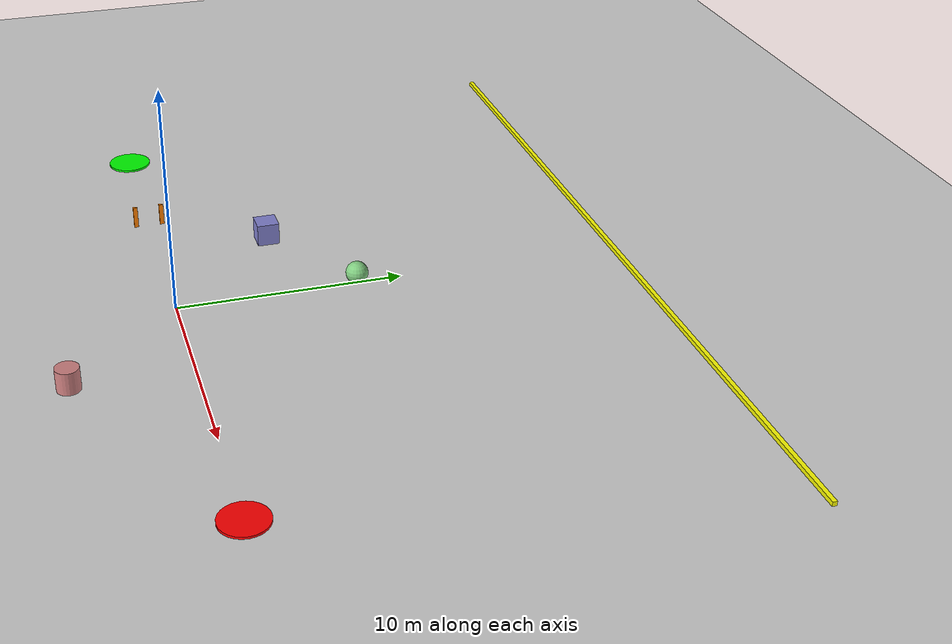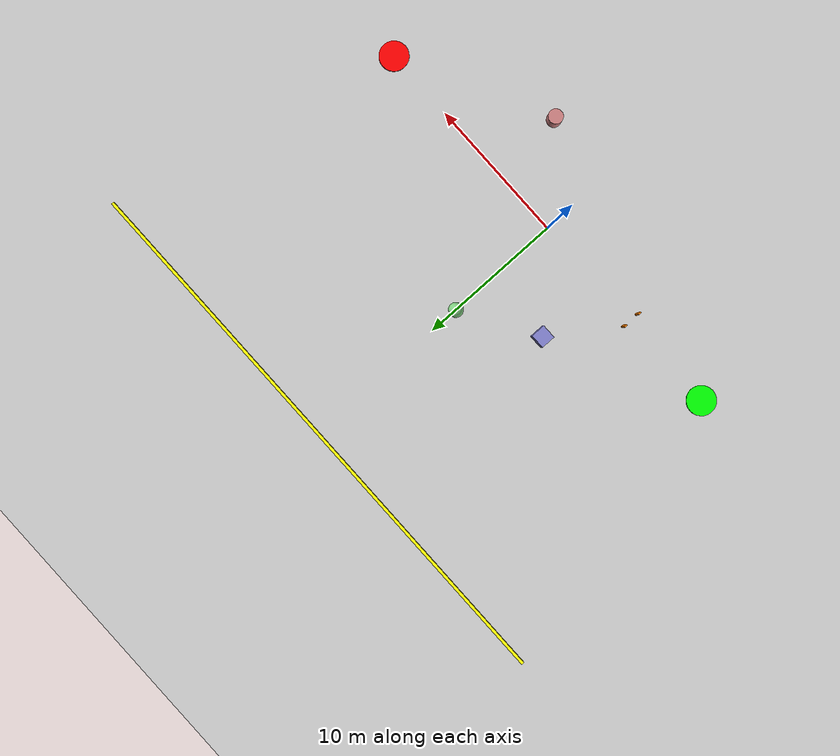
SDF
<?xml version="1.0" ?>
<sdf version="1.6">
  <world name="testing_ground">
    <include>
      <uri>model://sun</uri>
    </include>
    <include>
      <uri>model://ground_plane</uri>
    </include>

    <!-- Testing area boundaries -->
    <model name="boundary_north">
      <static>true</static>
      <pose>0 20 0.1 0 0 0</pose>
      <link name="link">
        <collision name="collision">
          <geometry>
            <box>
              <size>40 0.2 0.2</size>
            </box>
          </geometry>
        </collision>
        <visual name="visual">
          <geometry>
            <box>
              <size>40 0.2 0.2</size>
            </box>
          </geometry>
          <material>
            <ambient>1 1 0 1</ambient>
          </material>
        </visual>
      </link>
    </model>

    <!-- Test markers -->
    <model name="start_marker">
      <static>true</static>
      <pose>-15 0 0.05 0 0 0</pose>
      <link name="link">
        <collision name="collision">
          <geometry>
            <cylinder>
              <radius>1</radius>
              <length>0.1</length>
            </cylinder>
          </geometry>
        </collision>
        <visual name="visual">
          <geometry>
            <cylinder>
              <radius>1</radius>
              <length>0.1</length>
            </cylinder>
          </geometry>
          <material>
            <ambient>0 1 0 1</ambient>
          </material>
        </visual>
      </link>
    </model>

    <model name="goal_marker">
      <static>true</static>
      <pose>15 0 0.05 0 0 0</pose>
      <link name="link">
        <collision name="collision">
          <geometry>
            <cylinder>
              <radius>1</radius>
              <length>0.1</length>
            </cylinder>
          </geometry>
        </collision>
        <visual name="visual">
          <geometry>
            <cylinder>
              <radius>1</radius>
              <length>0.1</length>
            </cylinder>
          </geometry>
          <material>
            <ambient>1 0 0 1</ambient>
          </material>
        </visual>
      </link>
    </model>

    <!-- Various test obstacles -->
    <model name="test_box">
      <static>true</static>
      <pose>-5 5 0.5 0 0 0</pose>
      <link name="link">
        <collision name="collision">
          <geometry>
            <box>
              <size>1 1 1</size>
            </box>
          </geometry>
        </collision>
        <visual name="visual">
          <geometry>
            <box>
              <size>1 1 1</size>
            </box>
          </geometry>
          <material>
            <ambient>0.5 0.5 0.8 1</ambient>
          </material>
        </visual>
      </link>
    </model>

    <model name="test_cylinder">
      <static>true</static>
      <pose>5 -5 0.5 0 0 0</pose>
      <link name="link">
        <collision name="collision">
          <geometry>
            <cylinder>
              <radius>0.5</radius>
              <length>1</length>
            </cylinder>
          </geometry>
        </collision>
        <visual name="visual">
          <geometry>
            <cylinder>
              <radius>0.5</radius>
              <length>1</length>
            </cylinder>
          </geometry>
          <material>
            <ambient>0.8 0.5 0.5 1</ambient>
          </material>
        </visual>
      </link>
    </model>

    <model name="test_sphere">
      <static>true</static>
      <pose>0 8 0.5 0 0 0</pose>
      <link name="link">
        <collision name="collision">
          <geometry>
            <sphere>
              <radius>0.5</radius>
            </sphere>
          </geometry>
        </collision>
        <visual name="visual">
          <geometry>
            <sphere>
              <radius>0.5</radius>
            </sphere>
          </geometry>
          <material>
            <ambient>0.5 0.8 0.5 1</ambient>
          </material>
        </visual>
      </link>
    </model>

    <!-- Precision navigation test -->
    <model name="precision_gate1">
      <static>true</static>
      <pose>-8 0.6 0.5 0 0 0</pose>
      <link name="link">
        <collision name="collision">
          <geometry>
            <box>
              <size>0.1 0.2 1</size>
            </box>
          </geometry>
        </collision>
        <visual name="visual">
          <geometry>
            <box>
              <size>0.1 0.2 1</size>
            </box>
          </geometry>
          <material>
            <ambient>1 0.5 0 1</ambient>
          </material>
        </visual>
      </link>
    </model>

    <model name="precision_gate2">
      <static>true</static>
      <pose>-8 -0.6 0.5 0 0 0</pose>
      <link name="link">
        <collision name="collision">
          <geometry>
            <box>
              <size>0.1 0.2 1</size>
            </box>
          </geometry>
        </collision>
        <visual name="visual">
          <geometry>
            <box>
              <size>0.1 0.2 1</size>
            </box>
          </geometry>
          <material>
            <ambient>1 0.5 0 1</ambient>
          </material>
        </visual>
      </link>
    </model>

  </world>
</sdf>
